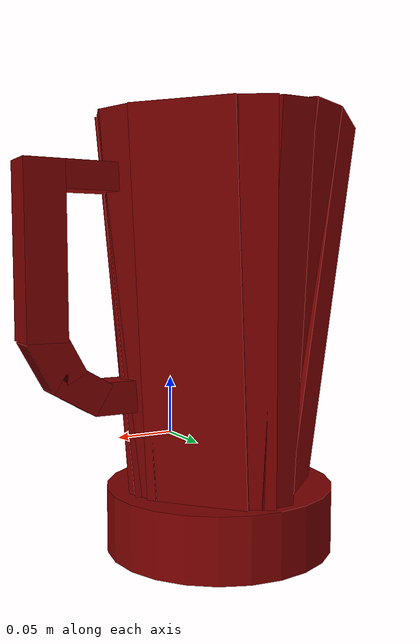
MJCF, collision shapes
<mujoco model="model">
  <option timestep="0.0005" gravity="0.0 0.0 -9.81"/>
  <compiler angle="radian"/>
  <asset>
    <mesh file="visuals/blade.obj" name="blade_vis"/>
    <mesh file="visuals/pitcher.obj" name="pitcher_vis"/>
    <mesh file="visuals/pitcher_main.obj" name="pitcher_main_vis"/>
    <texture file="visuals/T_BC001.png" name="pitcher_material" type="2d"/>
    <material name="pitcher_material" rgba="1 1 1 1.0" texture="pitcher_material" shininess="0.141421377658844" specular="0.33333333333333337"/>
    <texture file="visuals/T_BC001.png" name="blade_material" type="2d"/>
    <material name="blade_material" rgba="1 1 1 1.0" texture="blade_material" shininess="0.141421377658844" specular="0.33333333333333337"/>
    <texture file="visuals/T_BC001.png" name="pitcher_main_material" type="2d"/>
    <material name="pitcher_main_material" rgba="1 1 1 0.699999988079071" texture="pitcher_main_material" shininess="0.8264863044023514" specular="0.7872340339187474"/>
  </asset>
  <default>
    <default class="visual">
      <geom conaffinity="0" contype="0" group="1" type="mesh"/>
    </default>
    <default class="collision">
      <geom group="0" rgba="0.5 0 0 0.5" density="1" solref="0.001 1" solimp="0.998 0.998 0.001"/>
    </default>
    <default class="spawn">
      <geom group="0" rgba="1 1 1 0.5" contype="0" conaffinity="0"/>
      <site group="0" rgba="1 1 1 0.5"/>
    </default>
    <default class="region">
      <geom group="1" conaffinity="0" contype="0" rgba="0 1 0 0" mass="0"/>
    </default>
  </default>
  <worldbody>
    <body>
      <body name="object">
        <body name="pitcher">
          <geom mesh="pitcher_vis" type="mesh" solimp="0.998 0.998 0.001" solref="0.001 1" friction="0.95 0.3 0.1" class="visual" material="pitcher_material"/>
          <geom class="collision" type="box" pos="0.09629673 0.05202537 0.21673198" size="0.02094653993844986 0.016030292958021164 0.010851765982806683" quat="1.0 0.0 0.0 0.0" name="pitcher_handle_0"/>
          <geom class="collision" type="box" pos="0.07794306 0.05186071 0.04688044" size="0.017213819548487663 0.013093107379972935 0.012797565199434757" quat="1.0 0.0 0.0 0.0" name="pitcher_handle_1"/>
          <geom class="collision" type="box" pos="0.13286267 0.05202537 0.16014906" size="0.015919027850031853 0.016030292958021164 0.06743469834327698" quat="1.0 0.0 0.0 0.0" name="pitcher_handle_2"/>
          <geom class="collision" type="box" pos="0.12502524 0.05173888 0.08015375" size="0.020866841077804565 0.014718655496835709 0.014991585165262222" quat="0.8585997819900513 -6.927193485495309e-09 -0.512646496295929 -1.6028577576321368e-08" name="pitcher_handle_3"/>
          <geom type="cylinder" pos="-0.02201305 0.04989900 -0.06326365" size="0.09668877720832825 0.02689594402909279" quat="1.0 0.0 0.0 0.0" class="collision"/>
          <geom class="collision" type="box" pos="0.10477706 0.05173888 0.05577364" size="0.0190419964492321 0.014718655496835709 0.013767176307737827" quat="0.9641115069389343 7.396467438525178e-09 -0.26549768447875977 1.711440766882788e-08" name="pitcher_handle_4"/>
          <body name="blade">
            <geom mesh="blade_vis" type="mesh" solimp="0.998 0.998 0.001" solref="0.001 1" friction="0.95 0.3 0.1" class="visual" material="blade_material"/>
            <geom type="box" pos="-0.02282389 0.05254437 -0.01838473" size="0.03555736690759659 0.011566841043531895 0.005374473053961992" quat="1.0 0.0 0.0 0.0" class="collision"/>
            <geom type="box" pos="-0.02116509 0.02893147 -0.01775584" size="0.010374368168413639 0.011566841043531895 0.0021979371085762978" quat="1.0 0.0 0.0 0.0" class="collision"/>
            <geom type="box" pos="-0.02116509 0.07589483 -0.01775584" size="0.010374368168413639 0.011566841043531895 0.0021979371085762978" quat="1.0 0.0 0.0 0.0" class="collision"/>
            <geom type="box" pos="-0.02116509 0.09679450 -0.02312628" size="0.010374367237091064 0.012277994304895401 0.0011200300650671124" quat="0.9813559651374817 -0.19219909608364105 -0.0 0.0" class="collision"/>
            <geom type="box" pos="-0.02116509 0.00890204 -0.02217177" size="0.010374367237091064 0.009923008270561695 0.0011200300650671124" quat="0.9813559651374817 0.19219909608364105 0.0 0.0" class="collision"/>
            <geom type="box" pos="-0.06797011 0.05137453 -0.00512339" size="0.013877377845346928 0.0055869086645543575 0.001118509448133409" quat="0.9225588440895081 0.0 0.3858564496040344 0.0" class="collision"/>
            <geom type="box" pos="0.02509247 0.05137453 -0.00512339" size="0.013877379707992077 0.0055869086645543575 0.001118509448133409" quat="0.9225588440895081 0.0 -0.3858564496040344 0.0" class="collision"/>
          </body>
          <body name="pitcher_main">
            <geom class="region" type="cylinder" size="0.05791444703936577 0.11232888698577881" pos="-0.02077075 0.05404016 0.12025465" rgba="0 0 1 0.5" name="reg_int"/>
            <geom mesh="pitcher_main_vis" type="mesh" solimp="0.998 0.998 0.001" solref="0.001 1" friction="0.95 0.3 0.1" class="visual" material="pitcher_main_material"/>
            <geom type="box" pos="-0.08440144 0.10650524 0.11646234" size="0.042045958340168 0.004149169195443392 0.1530502587556839" quat="0.9263641834259033 -0.04800304025411606 -0.036923766136169434 0.3717280924320221" class="collision"/>
            <geom type="box" pos="-0.12730362 0.06677897 0.17227225" size="0.01971113495528698 0.004149168264120817 0.09649276733398438" quat="0.8696958422660828 -0.04780135676264763 -0.04569670185446739 0.4891379475593567" class="collision"/>
            <geom type="box" pos="-0.10518152 0.06182063 0.02139261" size="0.012013556435704231 0.004149165935814381 0.055805500596761703" quat="0.8699575662612915 -0.04277625307440758 -0.04287014156579971 0.4893936812877655" class="collision"/>
            <geom type="box" pos="-0.04211553 0.13761025 0.11843667" size="0.01705811731517315 0.004149168264120817 0.1530502587556839" quat="0.9774184823036194 -0.05376477539539337 -0.027874834835529327 0.20244856178760529" class="collision"/>
            <geom type="box" pos="0.03500572 0.10650525 0.11646235" size="0.0420459620654583 0.00414917292073369 0.1530502587556839" quat="0.9058413505554199 -0.03774869069457054 0.01987173780798912 -0.42146363854408264" class="collision"/>
            <geom type="box" pos="-0.00247474 0.14193490 0.11669371" size="0.014213469810783863 0.004149169195443392 0.1530502885580063" quat="0.9606580138206482 -0.04039445519447327 0.013716344721615314 -0.27443811297416687" class="collision"/>
            <geom type="box" pos="-0.02368115 0.14614255 0.11669372" size="0.014213466085493565 0.004149169661104679 0.1530502885580063" quat="0.9990887641906738 -0.042605455964803696 0.0021506804041564465 -0.0013561727246269584" class="collision"/>
            <geom type="box" pos="0.06354436 0.06296573 0.11623319" size="0.01606355421245098 0.00414917292073369 0.1530502885580063" quat="0.8138395547866821 -0.03349398449063301 0.02641974203288555 -0.579521656036377" class="collision"/>
            <geom type="box" pos="-0.08440145 -0.00289365 0.11646233" size="0.042045958340168 0.004149169195443392 0.1530502587556839" quat="0.9263641238212585 0.04800306260585785 -0.036923784762620926 -0.37172818183898926" class="collision"/>
            <geom type="box" pos="-0.12730362 0.03683261 0.17227225" size="0.01971113495528698 0.004149168264120817 0.09649276733398438" quat="0.8696958422660828 0.04780134931206703 -0.045696698129177094 -0.4891379475593567" class="collision"/>
            <geom type="box" pos="-0.10518152 0.04179097 0.02139261" size="0.012013556435704231 0.004149165935814381 0.055805500596761703" quat="0.8699575066566467 0.04277624562382698 -0.042870134115219116 -0.48939380049705505" class="collision"/>
            <geom type="box" pos="-0.04211553 -0.03399868 0.11843667" size="0.01705811731517315 0.004149168264120817 0.1530502587556839" quat="0.9774184823036194 0.05376475676894188 -0.02787482552230358 -0.2024485170841217" class="collision"/>
            <geom type="box" pos="0.03500572 -0.00289367 0.11646235" size="0.0420459620654583 0.00414917292073369 0.1530502587556839" quat="0.9058413505554199 0.03774869069457054 0.01987173594534397 0.42146363854408264" class="collision"/>
            <geom type="box" pos="-0.00247474 -0.03832332 0.11669371" size="0.014213469810783863 0.004149169195443392 0.1530502885580063" quat="0.9606580138206482 0.040394458919763565 0.013716345652937889 0.27443811297416687" class="collision"/>
            <geom type="box" pos="-0.02368115 -0.04253097 0.11669371" size="0.014213466085493565 0.004149169661104679 0.1530502885580063" quat="0.9990887641906738 0.04260546341538429 0.002150680171325803 0.001356172258965671" class="collision"/>
            <geom type="box" pos="0.06354436 0.04064585 0.11623319" size="0.01606355421245098 0.00414917292073369 0.1530502885580063" quat="0.8138395547866821 0.03349398449063301 0.026419747620821 0.579521656036377" class="collision"/>
          </body>
        </body>
        <geom class="region" name="reg_bbox" density="0" type="box" pos="0.00014849999999999586 0.0518055 0.089806" size="0.1492955 0.10844699999999999 0.1802225"/>
      </body>
      <site rgba="0 1 0 0" size="0.005" pos="-0.03334941 0.05179600 0.27355863" name="anchor_site"/>
    </body>
  </worldbody>
</mujoco>
